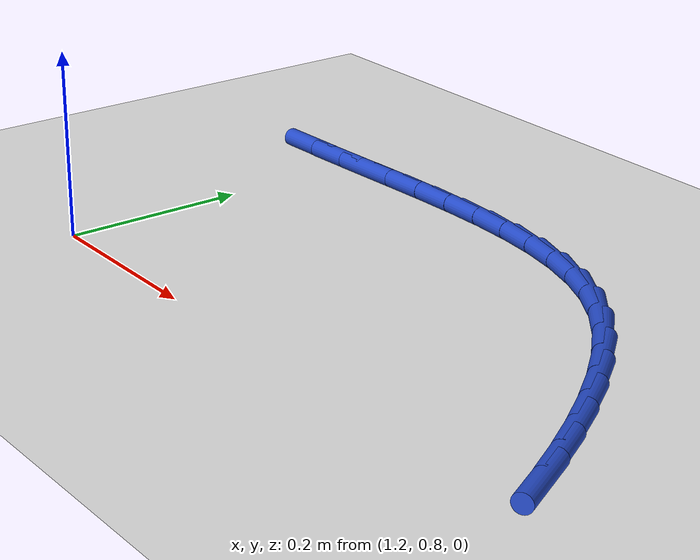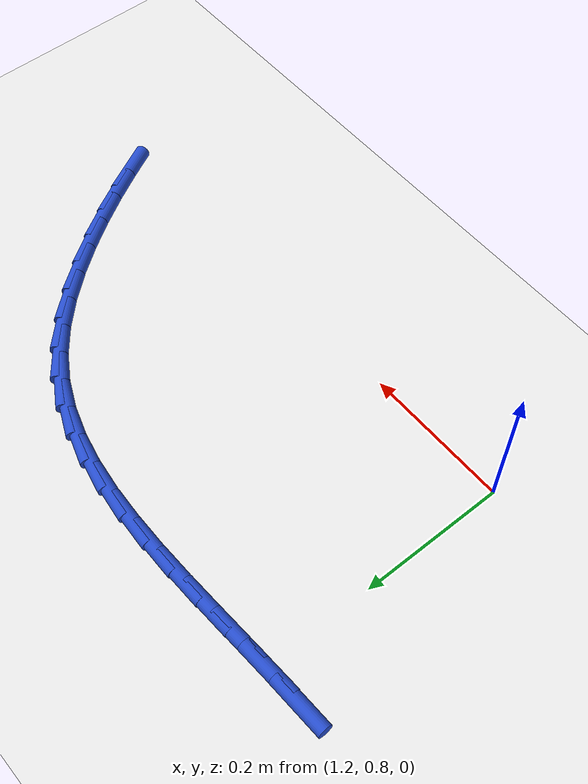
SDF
<sdf version="1.6">
 <world name="default">
  <model name="ground_plane">
   <static>1</static>
   <link name="link">
    <collision name="collision">
     <geometry><plane><normal>0 0 1</normal><size>100 100</size></plane></geometry>
     <surface><friction><ode><mu>100</mu><mu2>50</mu2></ode></friction></surface>
    </collision>
    <visual name="visual">
     <cast_shadows>0</cast_shadows>
     <geometry><plane><normal>0 0 1</normal><size>100 100</size></plane></geometry>
     <material>
      <script><uri>file://media/materials/scripts/gazebo.material</uri><name>Gazebo/WhiteGlow</name></script>
     </material>
    </visual>
   </link>
  </model>
  <model name="line">
   <link name="link_39">
    <pose>1.1441770604625157 1.1488312806777432 0.01 0 1.57 0.035479211586760914</pose>
    <collision name="collision">
     <geometry><cylinder><radius>0.01</radius><length>0.08</length></cylinder></geometry>
    </collision>
    <visual name="visual">
     <material>
      <script><name>Gazebo/Blue</name><uri>file://media/materials/scripts/gazebo.material</uri></script>
     </material>
     <geometry><cylinder><radius>0.01</radius><length>0.08</length></cylinder></geometry>
    </visual>
   </link>
   <link name="link_40">
    <pose>1.1953048358441025 1.1506460153495897 0.01 0 1.57 0.05073569828713031</pose>
    <collision name="collision">
     <geometry><cylinder><radius>0.01</radius><length>0.08</length></cylinder></geometry>
    </collision>
    <visual name="visual">
     <material>
      <script><name>Gazebo/Blue</name><uri>file://media/materials/scripts/gazebo.material</uri></script>
     </material>
     <geometry><cylinder><radius>0.01</radius><length>0.08</length></cylinder></geometry>
    </visual>
   </link>
   <link name="link_41">
    <pose>1.2457545065595481 1.1532078131163386 0.01 0 1.57 0.054707227208260774</pose>
    <collision name="collision">
     <geometry><cylinder><radius>0.01</radius><length>0.08</length></cylinder></geometry>
    </collision>
    <visual name="visual">
     <material>
      <script><name>Gazebo/Blue</name><uri>file://media/materials/scripts/gazebo.material</uri></script>
     </material>
     <geometry><cylinder><radius>0.01</radius><length>0.08</length></cylinder></geometry>
    </visual>
   </link>
   <link name="link_42">
    <pose>1.2953959924459302 1.1559262737143767 0.01 0 1.57 0.046876764439201545</pose>
    <collision name="collision">
     <geometry><cylinder><radius>0.01</radius><length>0.08</length></cylinder></geometry>
    </collision>
    <visual name="visual">
     <material>
      <script><name>Gazebo/Blue</name><uri>file://media/materials/scripts/gazebo.material</uri></script>
     </material>
     <geometry><cylinder><radius>0.01</radius><length>0.08</length></cylinder></geometry>
    </visual>
   </link>
   <link name="link_43">
    <pose>1.3440992133403278 1.1582109968800902 0.01 0 1.57 0.026457323632876544</pose>
    <collision name="collision">
     <geometry><cylinder><radius>0.01</radius><length>0.08</length></cylinder></geometry>
    </collision>
    <visual name="visual">
     <material>
      <script><name>Gazebo/Blue</name><uri>file://media/materials/scripts/gazebo.material</uri></script>
     </material>
     <geometry><cylinder><radius>0.01</radius><length>0.08</length></cylinder></geometry>
    </visual>
   </link>
   <link name="link_44">
    <pose>1.3917340890798193 1.1594715823498654 0.01 0 1.57 -0.007622150960910491</pose>
    <collision name="collision">
     <geometry><cylinder><radius>0.01</radius><length>0.08</length></cylinder></geometry>
    </collision>
    <visual name="visual">
     <material>
      <script><name>Gazebo/Blue</name><uri>file://media/materials/scripts/gazebo.material</uri></script>
     </material>
     <geometry><cylinder><radius>0.01</radius><length>0.08</length></cylinder></geometry>
    </visual>
   </link>
   <link name="link_45">
    <pose>1.4381705395014832 1.1591176298600883 0.01 0 1.57 -0.05666742512035592</pose>
    <collision name="collision">
     <geometry><cylinder><radius>0.01</radius><length>0.08</length></cylinder></geometry>
    </collision>
    <visual name="visual">
     <material>
      <script><name>Gazebo/Blue</name><uri>file://media/materials/scripts/gazebo.material</uri></script>
     </material>
     <geometry><cylinder><radius>0.01</radius><length>0.08</length></cylinder></geometry>
    </visual>
   </link>
   <link name="link_46">
    <pose>1.483278484442398 1.1565587391471448 0.01 0 1.57 -0.12205482158631852</pose>
    <collision name="collision">
     <geometry><cylinder><radius>0.01</radius><length>0.08</length></cylinder></geometry>
    </collision>
    <visual name="visual">
     <material>
      <script><name>Gazebo/Blue</name><uri>file://media/materials/scripts/gazebo.material</uri></script>
     </material>
     <geometry><cylinder><radius>0.01</radius><length>0.08</length></cylinder></geometry>
    </visual>
   </link>
   <link name="link_47">
    <pose>1.5269278437396416 1.1512045099474217 0.01 0 1.57 -0.20487862210858812</pose>
    <collision name="collision">
     <geometry><cylinder><radius>0.01</radius><length>0.08</length></cylinder></geometry>
    </collision>
    <visual name="visual">
     <material>
      <script><name>Gazebo/Blue</name><uri>file://media/materials/scripts/gazebo.material</uri></script>
     </material>
     <geometry><cylinder><radius>0.01</radius><length>0.08</length></cylinder></geometry>
    </visual>
   </link>
   <link name="link_48">
    <pose>1.5689885372302936 1.1424645419973052 0.01 0 1.57 -0.3053500909972815</pose>
    <collision name="collision">
     <geometry><cylinder><radius>0.01</radius><length>0.08</length></cylinder></geometry>
    </collision>
    <visual name="visual">
     <material>
      <script><name>Gazebo/Blue</name><uri>file://media/materials/scripts/gazebo.material</uri></script>
     </material>
     <geometry><cylinder><radius>0.01</radius><length>0.08</length></cylinder></geometry>
    </visual>
   </link>
   <link name="link_49">
    <pose>1.6093304847514314 1.1297484350331812 0.01 0 1.57 -0.4220054690578486</pose>
    <collision name="collision">
     <geometry><cylinder><radius>0.01</radius><length>0.08</length></cylinder></geometry>
    </collision>
    <visual name="visual">
     <material>
      <script><name>Gazebo/Blue</name><uri>file://media/materials/scripts/gazebo.material</uri></script>
     </material>
     <geometry><cylinder><radius>0.01</radius><length>0.08</length></cylinder></geometry>
    </visual>
   </link>
   <link name="link_50">
    <pose>1.647823606140134 1.1124657887914362 0.01 0 1.57 -0.5510310978147841</pose>
    <collision name="collision">
     <geometry><cylinder><radius>0.01</radius><length>0.08</length></cylinder></geometry>
    </collision>
    <visual name="visual">
     <material>
      <script><name>Gazebo/Blue</name><uri>file://media/materials/scripts/gazebo.material</uri></script>
     </material>
     <geometry><cylinder><radius>0.01</radius><length>0.08</length></cylinder></geometry>
    </visual>
   </link>
   <link name="link_51">
    <pose>1.6843378719896942 1.0900268669959559 0.01 0 1.57 -0.6789046960107836</pose>
    <collision name="collision">
     <geometry><cylinder><radius>0.01</radius><length>0.08</length></cylinder></geometry>
    </collision>
    <visual name="visual">
     <material>
      <script><name>Gazebo/Blue</name><uri>file://media/materials/scripts/gazebo.material</uri></script>
     </material>
     <geometry><cylinder><radius>0.01</radius><length>0.08</length></cylinder></geometry>
    </visual>
   </link>
   <link name="link_52">
    <pose>1.7187738462404958 1.0622421523449674 0.01 0 1.57 -0.7838795957503206</pose>
    <collision name="collision">
     <geometry><cylinder><radius>0.01</radius><length>0.08</length></cylinder></geometry>
    </collision>
    <visual name="visual">
     <material>
      <script><name>Gazebo/Blue</name><uri>file://media/materials/scripts/gazebo.material</uri></script>
     </material>
     <geometry><cylinder><radius>0.01</radius><length>0.08</length></cylinder></geometry>
    </visual>
   </link>
   <link name="link_53">
    <pose>1.7511144576082371 1.0299996149329005 0.01 0 1.57 -0.8670533304567966</pose>
    <collision name="collision">
     <geometry><cylinder><radius>0.01</radius><length>0.08</length></cylinder></geometry>
    </collision>
    <visual name="visual">
     <material>
      <script><name>Gazebo/Blue</name><uri>file://media/materials/scripts/gazebo.material</uri></script>
     </material>
     <geometry><cylinder><radius>0.01</radius><length>0.08</length></cylinder></geometry>
    </visual>
   </link>
   <link name="link_54">
    <pose>1.7813563551304692 0.9943667126730029 0.01 0 1.57 -0.9328322490496349</pose>
    <collision name="collision">
     <geometry><cylinder><radius>0.01</radius><length>0.08</length></cylinder></geometry>
    </collision>
    <visual name="visual">
     <material>
      <script><name>Gazebo/Blue</name><uri>file://media/materials/scripts/gazebo.material</uri></script>
     </material>
     <geometry><cylinder><radius>0.01</radius><length>0.08</length></cylinder></geometry>
    </visual>
   </link>
   <link name="link_55">
    <pose>1.8094961878447444 0.9564109034785224 0.01 0 1.57 -0.9848042373705735</pose>
    <collision name="collision">
     <geometry><cylinder><radius>0.01</radius><length>0.08</length></cylinder></geometry>
    </collision>
    <visual name="visual">
     <material>
      <script><name>Gazebo/Blue</name><uri>file://media/materials/scripts/gazebo.material</uri></script>
     </material>
     <geometry><cylinder><radius>0.01</radius><length>0.08</length></cylinder></geometry>
    </visual>
   </link>
   <link name="link_56">
    <pose>1.835536881352142 0.9171791939462519 0.01 0 1.57 -1.0279345670024131</pose>
    <collision name="collision">
     <geometry><cylinder><radius>0.01</radius><length>0.08</length></cylinder></geometry>
    </collision>
    <visual name="visual">
     <material>
      <script><name>Gazebo/Blue</name><uri>file://media/materials/scripts/gazebo.material</uri></script>
     </material>
     <geometry><cylinder><radius>0.01</radius><length>0.08</length></cylinder></geometry>
    </visual>
   </link>
   <link name="link_57">
    <pose>1.8596230573765498 0.8772568934027547 0.01 0 1.57 -1.0651123211707856</pose>
    <collision name="collision">
     <geometry><cylinder><radius>0.01</radius><length>0.08</length></cylinder></geometry>
    </collision>
    <visual name="visual">
     <material>
      <script><name>Gazebo/Blue</name><uri>file://media/materials/scripts/gazebo.material</uri></script>
     </material>
     <geometry><cylinder><radius>0.01</radius><length>0.08</length></cylinder></geometry>
    </visual>
   </link>
   <link name="link_58">
    <pose>1.8820395689228855 0.8367723868892146 0.01 0 1.57 -1.0960957585517523</pose>
    <collision name="collision">
     <geometry><cylinder><radius>0.01</radius><length>0.08</length></cylinder></geometry>
    </collision>
    <visual name="visual">
     <material>
      <script><name>Gazebo/Blue</name><uri>file://media/materials/scripts/gazebo.material</uri></script>
     </material>
     <geometry><cylinder><radius>0.01</radius><length>0.08</length></cylinder></geometry>
    </visual>
   </link>
  </model>
 </world>
</sdf>
